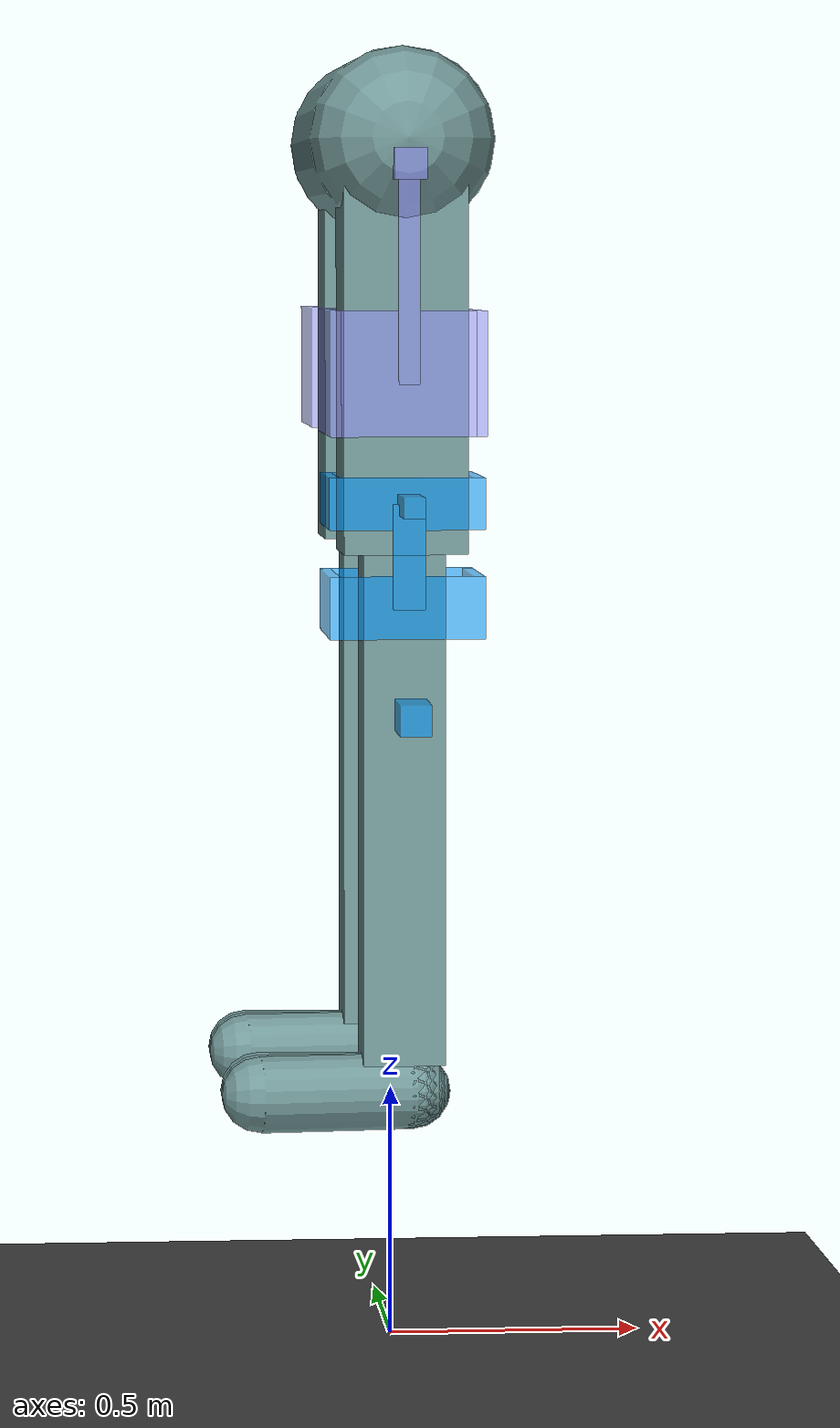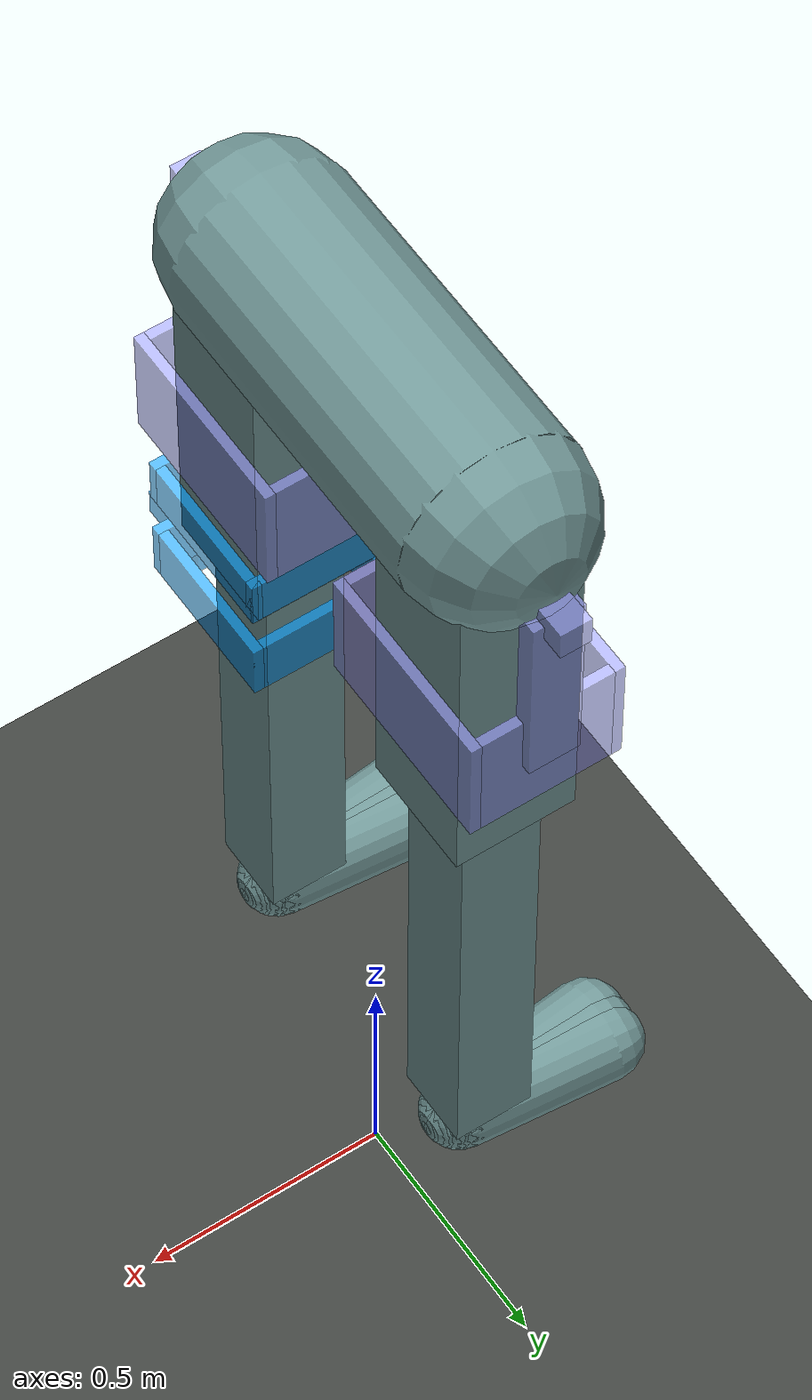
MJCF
<mujoco model="inverted pendulum">
    <compiler angle="radian" />

    <option timestep="0.01" iterations="20">
        <flag sensornoise="enable"/>
    </option>

    <default>
        <geom rgba="0.45 0.6 0.6 1" />
        <site type="sphere" size="0.02"/>
    </default>

    <!-- Add the following section for gravity -->
    <option gravity="0 0 -9.81" />

    <worldbody>
        <light directional="true" cutoff="4" exponent="20" diffuse="1 1 1" specular="0 0 0" pos=".9 .3 2.5" dir="-.9 -.3 -2.5" />

        <!-- Ground -->
        <geom name="ground" type="plane" pos="0 0 0" size="5 5 5" rgba=".25 .26 .25 1" />

        <!-- Beam -->
        <body name="beam" pos="0 0 1.5">
            <geom name="butt" type="capsule" fromto=" 0 -.33 0.9 0 .33 0.9"  size="0.18" mass="5"/>

            <!-- Left rod1 -->
            <body name="left" pos="0 -0.30 0.5">
                <geom name="rod1" type="box" pos="0 0 0" size="0.12 0.12 0.4" mass="6.0" />
                <joint name="thigh_L" pos="0 0 0.4" axis="0 1 0"  damping="1" />
                <body name="knee_L" pos="0 0 -0.4">
                    <geom name="ballgeom1" type="sphere" size="0.08" />
                </body>
                <!--Additional rod1-->
                <body name="additional_rod1" pos="0 0 -0.9">
                    <geom name="additional_rod1_geom" type="box" pos="0 0 0" size="0.08 0.08 .5" mass="3.66" />
                    <joint name="knee_L" pos="0 0 0.5" axis="0 1 0" damping="0.5" limited="true" range="-1.0 0.1"/> <!--왼쪽 무릎-->
                    <!-- Foot -->
                    <body name="left_foot" pos="0.02 0 -0.56">
                        <geom name="left_foot_cap1" type="capsule" fromto="0 0 0 -0.30 -0.03 0"  size="0.075" />
                        <geom name="left_foot_cap2" type="capsule" fromto="0 0 0 -0.30  0.00 0"  size="0.075" />
                        <geom name="left_foot_cap3" type="capsule" fromto="0 0 0 -0.30  0.03 0"  size="0.075" />
                    </body>
                </body>
            </body>

            <body name="assist_motor_left" pos="0 -0.50 0.85"> <!--허벅지 웨어러블-->
                <geom name="left" type="box" size="0.03 0.06 0.03" rgba="0.6 0.6 1.0 0.6" mass="1"/>
                <joint name="real_motor_left" pos="0 -0.23 0" axis="0 1 0" damping="1" />

                <geom name="connect_left" type="box" pos="0 0 -0.22" size="0.02 0.02 0.2" rgba="0.6 0.6 1.0 0.6"/>
                <body name="wearable_L" pos="0 0.15 -0.4">
                    <geom name="box1_geom1" type="box" pos="-0.14 0.05 0" size="0.01 0.20 0.12" rgba="0.6 0.6 1.0 0.6"/>
                    <geom name="box1_geom2" type="box" pos="0.14 0.05 0" size="0.01 0.20 0.12" rgba="0.6 0.6 1.0 0.6"/>
                    <geom name="box1_geom3" type="box" pos="0 -0.14 0" size="0.13 0.01 0.12" rgba="0.6 0.6 1.0 0.6"/>
                    <geom name="box1_geom4" type="box" pos="0 0.24 0" size="0.13 0.01 0.12" rgba="0.6 0.6 1.0 0.6"/>
                    <joint name="box_L" pos="0 0 0" axis="0 -1 0" limited="true" damping="1" range="-0.05 0.05"/>
                </body>
            </body>

<!-- 무릎 웨어러블 -->
            <body name="knee_motor_left" pos="0 -0.55 0.20">
                <geom name="left_knee" type="box" size="0.02 0.10 0.02" rgba="0.0 0.6 1.0 0.6" mass="1"/>  윗부분 연결봉
                <joint name="knee_left" pos="0.0 -0.23 0" axis="0 1 0" damping="1" />

                <body name="wearable_left_knee_1" pos="0 0.15 0">
                    <geom name="knee_box1-1" type="box" pos="-0.14 0.10 0" size="0.01 0.15 0.05" rgba="0.0 0.6 1.0 0.6"/>
                    <geom name="knee_box1-2" type="box" pos="0.14 0.10 0" size="0.01 0.15 0.05" rgba="0.0 0.6 1.0 0.6"/>
                    <geom name="knee_box1-3" type="box" pos="0 -0.06 0" size="0.15 0.01 0.05" rgba="0.0 0.6 1.0 0.6"/>
                    <geom name="knee_box1-4" type="box" pos="0 0.24 0" size="0.15 0.01 0.05" rgba="0.0 0.6 1.0 0.6"/>
                </body>

                <geom name="connect_left_knee" type="box" pos="0 0.06 -0.10" size="0.03 0.02 0.10" rgba="0.0 0.6 1.0 0.6"/> 옆쪽 긴 연결봉

                <geom name="connect_left_knee_2" type="box"  pos="0 -0.05 -0.40" size="0.03 0.08 0.03" rgba="0.0 0.6 1.0 0.6"/>   아래부분 연결봉

                <body name="wearable_left_knee" pos="0 0.15 -0.2">
                    <geom name="knee_box1_geom1" type="box" pos="-0.14 0.10 0" size="0.01 0.15 0.06" rgba="0.0 0.6 1.0 0.6"/>
                    <geom name="knee_box1_geom2" type="box" pos="0.14 0.10 0" size="0.01 0.15 0.06" rgba="0.0 0.6 1.0 0.6"/>
                    <geom name="knee_box1_geom3" type="box" pos="0 -0.06 0" size="0.15 0.01 0.06" rgba="0.0 0.6 1.0 0.6"/>
                    <geom name="knee_box1_geom4" type="box" pos="0 0.24 0" size="0.15 0.01 0.06" rgba="0.0 0.6 1.0 0.6"/>
                    <joint name="knee_box_L" pos="0 0 0" axis="0 -1 0" limited="true" damping="1" range="-0.05 0.05"/>
                </body>
            </body>

            <!-- Right rod2 -->
            <body name="right" pos="0 0.30 0.5">
                <geom name="rod2" type="box" pos="0 0 0" size="0.12 0.12 0.4" mass="6.0"/>
                <joint name="thigh_R" pos="0 0 0.4" axis="0 1 0"  damping="1" />
                <body name="knee_R" pos="0 0 -0.4">
                    <geom name="ballgeom2" type="sphere" size="0.08"/>
                </body>
                <!-- Additional rod2 -->
                <body name="additional_rod2" pos="0 0 -0.9">
                    <geom name="additional_rod2_geom" type="box" pos="0 0 0" size="0.08 0.08 0.5" mass="3.66" />
                    <joint name="knee_R" pos="0 0 0.5" axis="0 1 0" damping="0.5" limited="true" range="-1.0 0.1"/>  <!--오른쪽 무릎-->
                    <!-- Foot -->
                    <body name="right_foot" pos="0.02 0 -0.56">
                        <geom name="right_foot_cap1" type="capsule" fromto="0 0 0 -0.30 -0.03 0"  size="0.075"/>
                        <geom name="right_foot_cap2" type="capsule" fromto="0 0 0 -0.30  0.0 0"  size="0.075"/>
                        <geom name="right_foot_cap3" type="capsule" fromto="0 0 0 -0.30  0.03 0" size="0.075"/>
                    </body>
                </body>
            </body>

            <body name="assist_motor_right" pos="0 0.50 0.85">
                <geom name="right" type="box" size="0.03 0.065 0.03" rgba="0.6 0.6 1.0 0.6" mass="1"/>
                <joint name="real_motor_right" pos="0 0.0 0" axis="0 1 0" damping="1" />

                <geom name="connect_right" type="box" pos="0 0 -0.2" size="0.05 0.02 0.2" rgba="0.6 0.6 1.0 0.6" />
                <body name="wearable_R" pos="0 -0.15 -0.4">
                        <geom name="box2_geom1" type="box" pos="-0.14 -0.05 0" size="0.01 0.20 0.12" rgba="0.6 0.6 1.0 0.6"/>
                        <geom name="box2_geom2" type="box" pos="0.14 -0.05 0" size="0.01 0.20 0.12" rgba="0.6 0.6 1.0 0.6"/>
                        <geom name="box2_geom3" type="box" pos="0 0.14 0" size="0.13 0.01 0.12" rgba="0.6 0.6 1.0 0.6"/>
                        <geom name="box2_geom4" type="box" pos="0 -0.24 0" size="0.13 0.01 0.12" rgba="0.6 0.6 1.0 0.6"/>
                        <joint name="box_R" pos="0 0 0" axis="0 1 0" limited="true" damping="1" range="-0.05 0.05"/>
                </body>
            </body>
        </body>
    </worldbody>

	<actuator>
        <motor joint='thigh_L' name='motor1' />
		<motor joint='thigh_R' name='motor2' />
        <motor joint='real_motor_left' name="left_motor"/>
        <motor joint='real_motor_right' name="right_motor"/>
        <motor joint='knee_left' name="knee_motor_left" />
	</actuator>

	<contact>
		<exclude body1="beam" body2="left"/>
		<exclude body1="beam" body2="right"/>
        <exclude body1="left" body2="assist_motor_left"/>
		<exclude body1="right" body2="assist_motor_right"/>
	</contact>
</mujoco>
